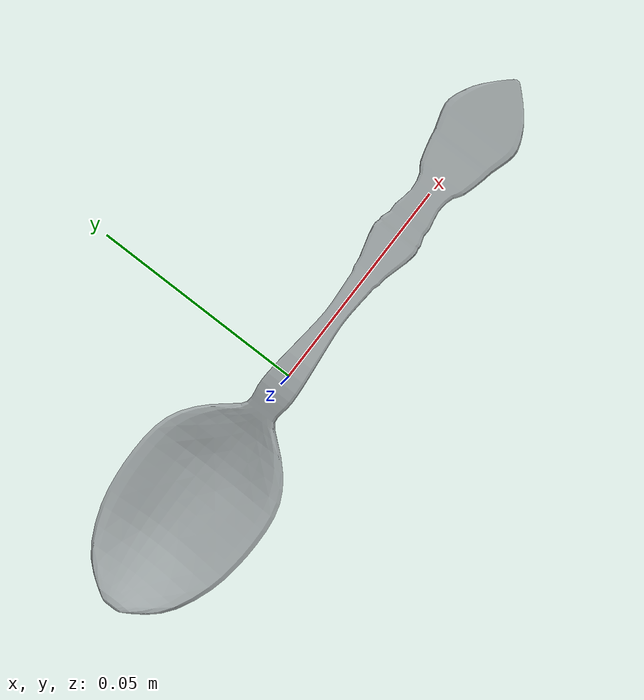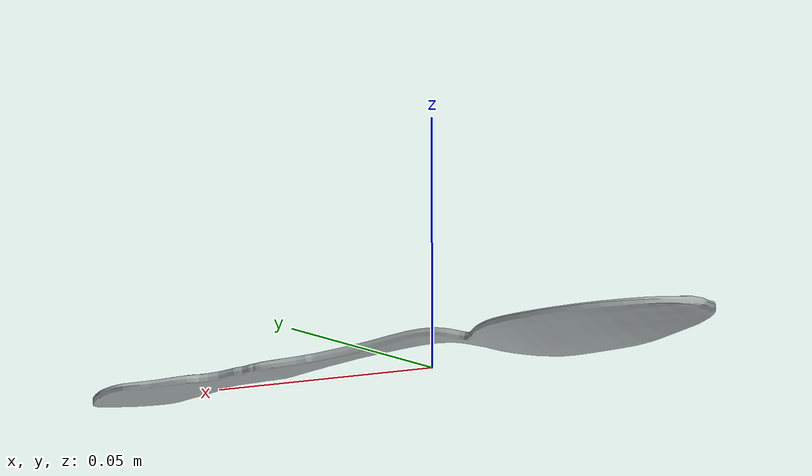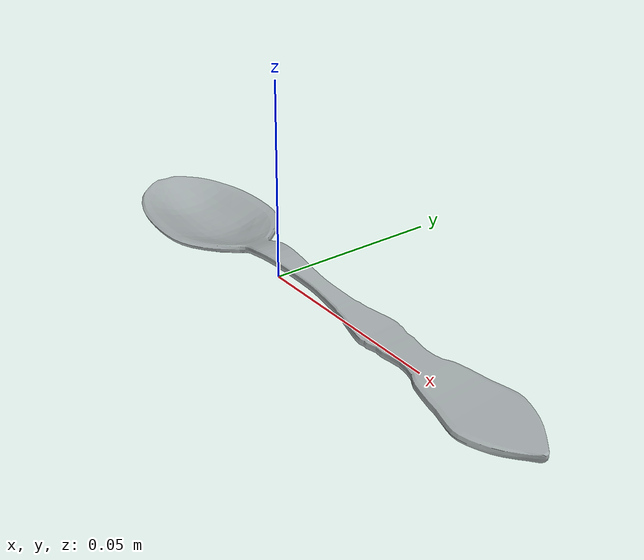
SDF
<?xml version="1.0" ?>
<sdf version='1.4'>
  <model name="coffee_spoon">
      <static>0</static>
      <link name='link'>
        <inertial>
          <mass>0.023</mass>
          <inertia>
            <ixx>2.20580653073e-06</ixx>
            <ixy>0.000000</ixy>
            <ixz>0.000000</ixz>
            <iyy>3.87120308638e-05</iyy>
            <iyz>0.000000</iyz>
            <izz>4.06476471169e-05</izz>
          </inertia>
        </inertial>
        <collision name='collision'>
          <geometry>
            <mesh>
              <uri>model://coffee_spoon/meshes/coffee_spoon_collision.stl</uri>
              <scale>1 1 1</scale>
            </mesh>
          </geometry>
          <surface>
            <friction>
              <ode>
                <mu>30.0</mu>
                <mu2>30.0</mu2>
              </ode>
            </friction>
            <contact>
              <ode>
                <kp>1000000.0</kp>
                <kd>1000000.0</kd>
                <max_vel>1.0</max_vel>
                <min_depth>0.002</min_depth>
              </ode>
            </contact>
          </surface>
        </collision>
        <visual name='visual'>
          <geometry>
            <mesh>
              <uri>model://coffee_spoon/meshes/spoon.dae</uri>
              <scale>1 1 1</scale>
            </mesh>
          </geometry>

        </visual>
        <velocity_decay>
          <linear>0.000000</linear>
          <angular>0.000000</angular>
        </velocity_decay>
        <self_collide>0</self_collide>
        <kinematic>0</kinematic>
        <gravity>1</gravity>
      </link>
  </model>
</sdf>
